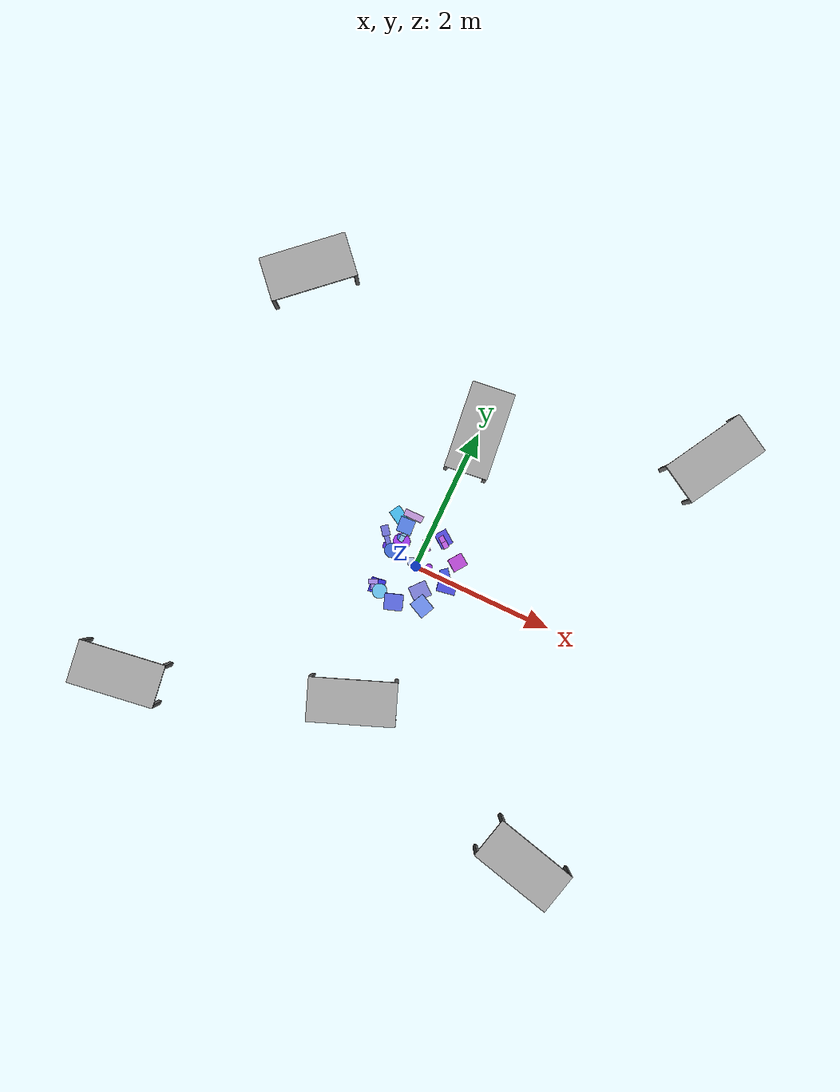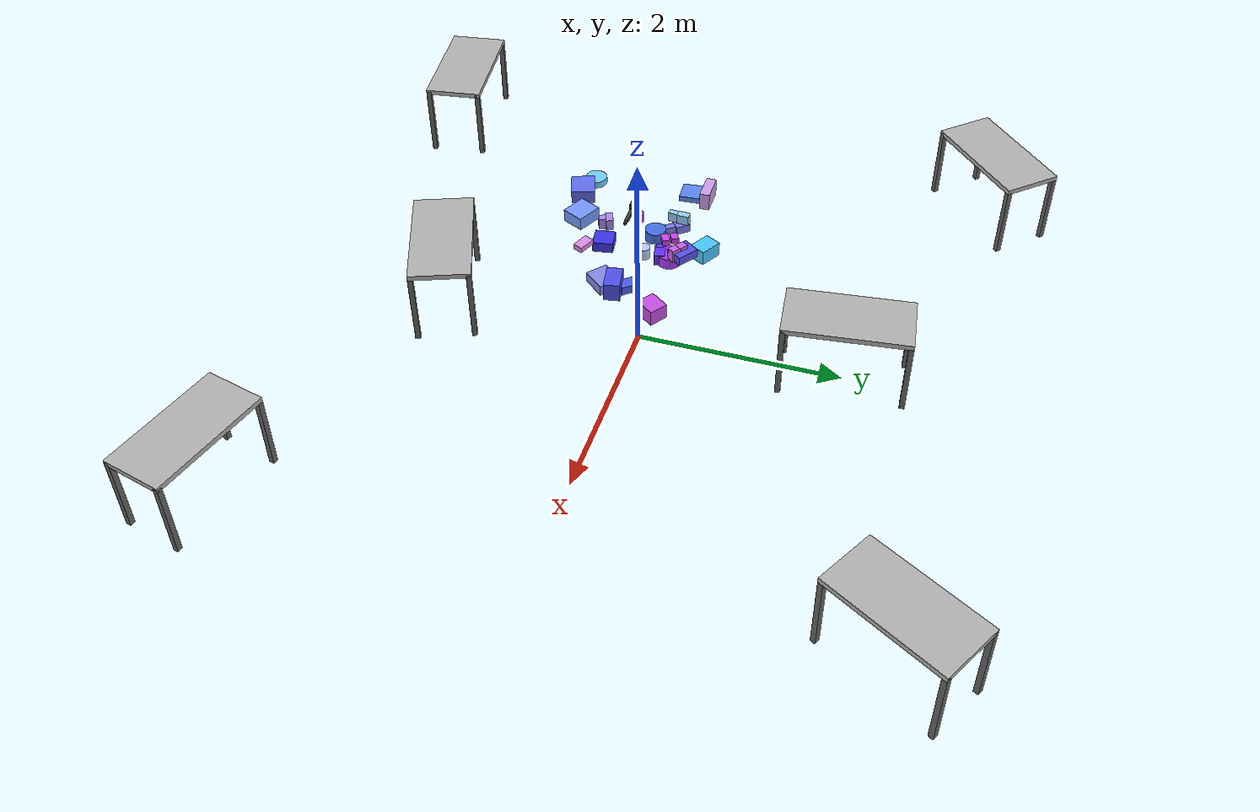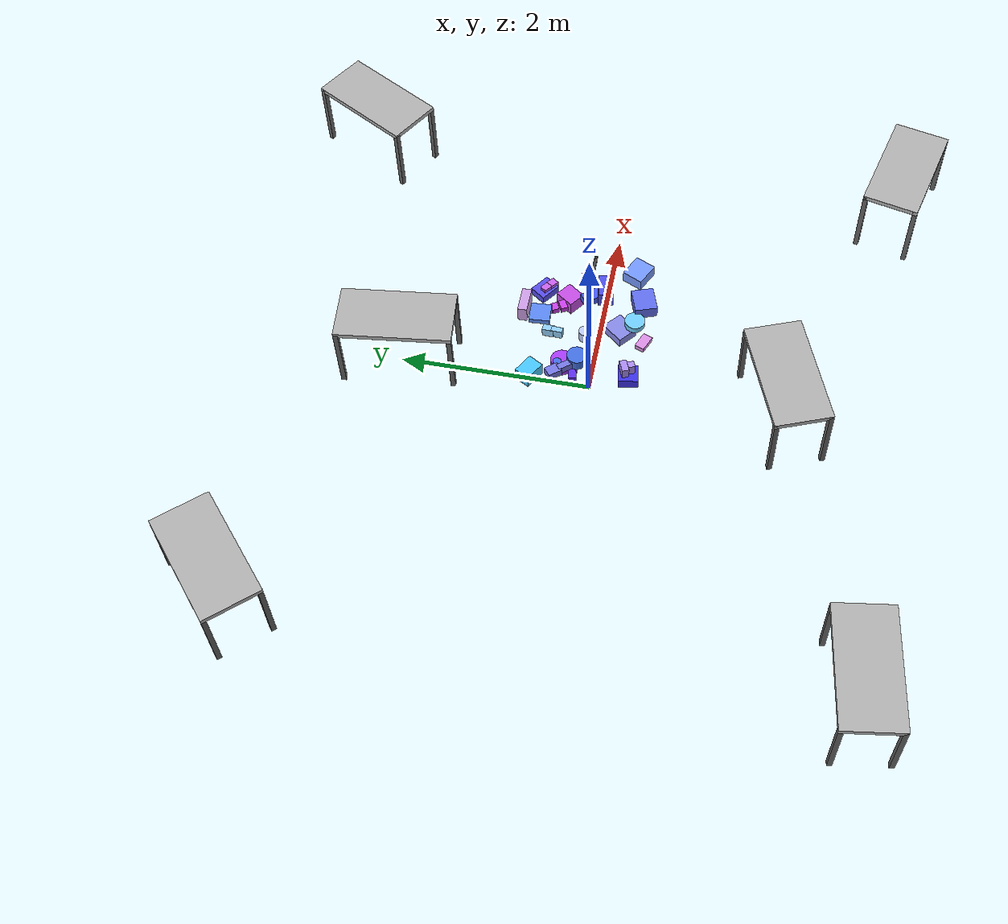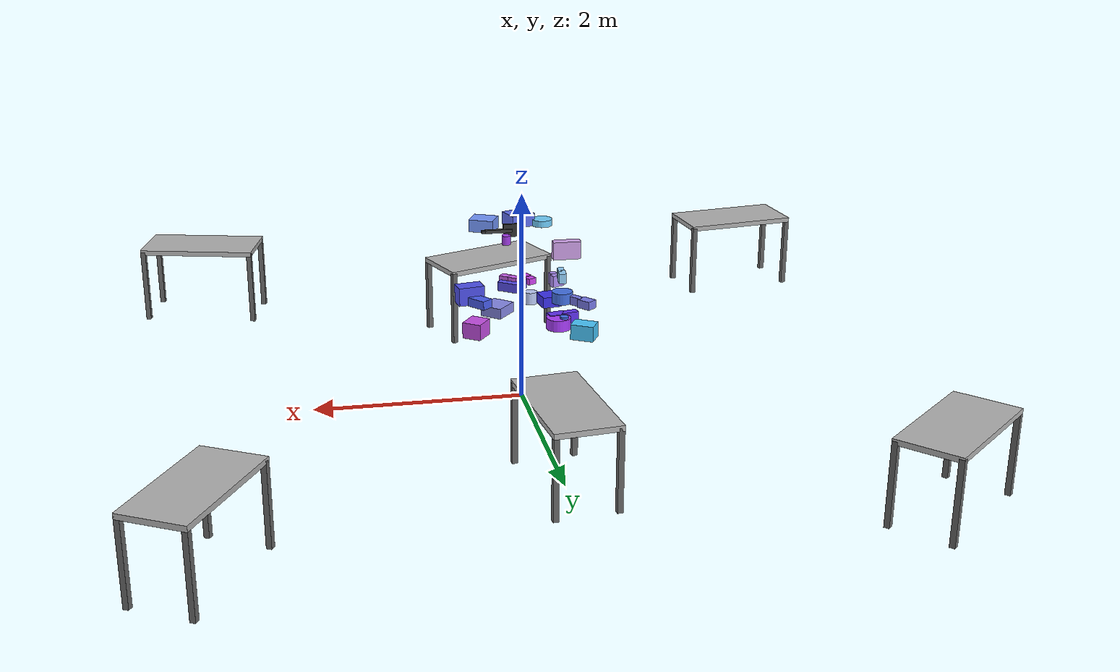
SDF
<sdf version="1.7">
 <world name="warehouse">
  <physics type="ode"><max_step_size>0.003</max_step_size><real_time_factor>1.0</real_time_factor></physics>
  <plugin name="ignition::gazebo::systems::Physics" filename="libignition-gazebo-physics-system.so"/>
  <plugin name="ignition::gazebo::systems::UserCommands" filename="libignition-gazebo-user-commands-system.so"/>
  <plugin name="ignition::gazebo::systems::SceneBroadcaster" filename="libignition-gazebo-scene-broadcaster-system.so"/>
  <scene>
   <ambient>0.18 0.18 0.18 1</ambient>
   <background>0.4 0.4 0.45 1</background>
   <shadows>0</shadows>
   <grid>false</grid>
  </scene>
  <model name="ground_plane">
   <static>true</static>
   <link name="link">
    <collision name="collision">
     <geometry><plane><normal>0.0 0.0 1</normal><size>1 1</size></plane></geometry>
    </collision>
   </link>
  </model>
  <model name="desk_0">
   <static>1</static>
   <link name="desk_link">
    <visual name="desk_0_top_visual">
     <geometry><box><size>1.200 0.600 0.050</size></box></geometry>
     <material><ambient>0.70 0.70 0.70 1.00</ambient><diffuse>0.70 0.70 0.70 1.00</diffuse></material>
     <pose>0.0000 0.0000 0.7550 0.0000 0.0000 0.0000</pose>
    </visual>
    <collision name="desk_0_top_collision">
     <geometry><box><size>1.200 0.600 0.050</size></box></geometry>
     <pose>0.0000 0.0000 0.7550 0.0000 0.0000 0.0000</pose>
    </collision>
    <visual name="desk_0_leg_-1_-1_visual">
     <geometry><box><size>0.050 0.050 0.760</size></box></geometry>
     <material><ambient>0.40 0.40 0.40 1.00</ambient><diffuse>0.40 0.40 0.40 1.00</diffuse></material>
     <pose>-0.5750 -0.2750 0.3800 0.0000 0.0000 0.0000</pose>
    </visual>
    <visual name="desk_0_leg_-1_1_visual">
     <geometry><box><size>0.050 0.050 0.760</size></box></geometry>
     <material><ambient>0.40 0.40 0.40 1.00</ambient><diffuse>0.40 0.40 0.40 1.00</diffuse></material>
     <pose>-0.5750 0.2750 0.3800 0.0000 0.0000 0.0000</pose>
    </visual>
    <visual name="desk_0_leg_1_-1_visual">
     <geometry><box><size>0.050 0.050 0.760</size></box></geometry>
     <material><ambient>0.40 0.40 0.40 1.00</ambient><diffuse>0.40 0.40 0.40 1.00</diffuse></material>
     <pose>0.5750 -0.2750 0.3800 0.0000 0.0000 0.0000</pose>
    </visual>
    <visual name="desk_0_leg_1_1_visual">
     <geometry><box><size>0.050 0.050 0.760</size></box></geometry>
     <material><ambient>0.40 0.40 0.40 1.00</ambient><diffuse>0.40 0.40 0.40 1.00</diffuse></material>
     <pose>0.5750 0.2750 0.3800 0.0000 0.0000 0.0000</pose>
    </visual>
    <inertial>
     <mass>5.000</mass>
     <inertia>
      <ixx>0.010000</ixx>
      <iyy>0.010000</iyy>
      <izz>0.010000</izz>
      <ixy>0.000000</ixy>
      <ixz>0.000000</ixz>
      <iyz>0.000000</iyz>
     </inertia>
    </inertial>
   </link>
   <pose>-3.0000 -3.0000 0.0000 0.0000 0.0000 -2.9998</pose>
  </model>
  <model name="desk_1">
   <static>1</static>
   <link name="desk_link">
    <visual name="desk_1_top_visual">
     <geometry><box><size>1.200 0.600 0.050</size></box></geometry>
     <material><ambient>0.70 0.70 0.70 1.00</ambient><diffuse>0.70 0.70 0.70 1.00</diffuse></material>
     <pose>0.0000 0.0000 0.7550 0.0000 0.0000 0.0000</pose>
    </visual>
    <collision name="desk_1_top_collision">
     <geometry><box><size>1.200 0.600 0.050</size></box></geometry>
     <pose>0.0000 0.0000 0.7550 0.0000 0.0000 0.0000</pose>
    </collision>
    <visual name="desk_1_leg_-1_-1_visual">
     <geometry><box><size>0.050 0.050 0.760</size></box></geometry>
     <material><ambient>0.40 0.40 0.40 1.00</ambient><diffuse>0.40 0.40 0.40 1.00</diffuse></material>
     <pose>-0.5750 -0.2750 0.3800 0.0000 0.0000 0.0000</pose>
    </visual>
    <visual name="desk_1_leg_-1_1_visual">
     <geometry><box><size>0.050 0.050 0.760</size></box></geometry>
     <material><ambient>0.40 0.40 0.40 1.00</ambient><diffuse>0.40 0.40 0.40 1.00</diffuse></material>
     <pose>-0.5750 0.2750 0.3800 0.0000 0.0000 0.0000</pose>
    </visual>
    <visual name="desk_1_leg_1_-1_visual">
     <geometry><box><size>0.050 0.050 0.760</size></box></geometry>
     <material><ambient>0.40 0.40 0.40 1.00</ambient><diffuse>0.40 0.40 0.40 1.00</diffuse></material>
     <pose>0.5750 -0.2750 0.3800 0.0000 0.0000 0.0000</pose>
    </visual>
    <visual name="desk_1_leg_1_1_visual">
     <geometry><box><size>0.050 0.050 0.760</size></box></geometry>
     <material><ambient>0.40 0.40 0.40 1.00</ambient><diffuse>0.40 0.40 0.40 1.00</diffuse></material>
     <pose>0.5750 0.2750 0.3800 0.0000 0.0000 0.0000</pose>
    </visual>
    <inertial>
     <mass>5.000</mass>
     <inertia>
      <ixx>0.010000</ixx>
      <iyy>0.010000</iyy>
      <izz>0.010000</izz>
      <ixy>0.000000</ixy>
      <ixz>0.000000</ixz>
      <iyz>0.000000</iyz>
     </inertia>
    </inertial>
   </link>
   <pose>3.0000 -3.0000 0.0000 0.0000 0.0000 -0.2407</pose>
  </model>
  <model name="desk_2">
   <static>1</static>
   <link name="desk_link">
    <visual name="desk_2_top_visual">
     <geometry><box><size>1.200 0.600 0.050</size></box></geometry>
     <material><ambient>0.70 0.70 0.70 1.00</ambient><diffuse>0.70 0.70 0.70 1.00</diffuse></material>
     <pose>0.0000 0.0000 0.7550 0.0000 0.0000 0.0000</pose>
    </visual>
    <collision name="desk_2_top_collision">
     <geometry><box><size>1.200 0.600 0.050</size></box></geometry>
     <pose>0.0000 0.0000 0.7550 0.0000 0.0000 0.0000</pose>
    </collision>
    <visual name="desk_2_leg_-1_-1_visual">
     <geometry><box><size>0.050 0.050 0.760</size></box></geometry>
     <material><ambient>0.40 0.40 0.40 1.00</ambient><diffuse>0.40 0.40 0.40 1.00</diffuse></material>
     <pose>-0.5750 -0.2750 0.3800 0.0000 0.0000 0.0000</pose>
    </visual>
    <visual name="desk_2_leg_-1_1_visual">
     <geometry><box><size>0.050 0.050 0.760</size></box></geometry>
     <material><ambient>0.40 0.40 0.40 1.00</ambient><diffuse>0.40 0.40 0.40 1.00</diffuse></material>
     <pose>-0.5750 0.2750 0.3800 0.0000 0.0000 0.0000</pose>
    </visual>
    <visual name="desk_2_leg_1_-1_visual">
     <geometry><box><size>0.050 0.050 0.760</size></box></geometry>
     <material><ambient>0.40 0.40 0.40 1.00</ambient><diffuse>0.40 0.40 0.40 1.00</diffuse></material>
     <pose>0.5750 -0.2750 0.3800 0.0000 0.0000 0.0000</pose>
    </visual>
    <visual name="desk_2_leg_1_1_visual">
     <geometry><box><size>0.050 0.050 0.760</size></box></geometry>
     <material><ambient>0.40 0.40 0.40 1.00</ambient><diffuse>0.40 0.40 0.40 1.00</diffuse></material>
     <pose>0.5750 0.2750 0.3800 0.0000 0.0000 0.0000</pose>
    </visual>
    <inertial>
     <mass>5.000</mass>
     <inertia>
      <ixx>0.010000</ixx>
      <iyy>0.010000</iyy>
      <izz>0.010000</izz>
      <ixy>0.000000</ixy>
      <ixz>0.000000</ixz>
      <iyz>0.000000</iyz>
     </inertia>
    </inertial>
   </link>
   <pose>3.0000 3.0000 0.0000 0.0000 0.0000 -2.0857</pose>
  </model>
  <model name="desk_3">
   <static>1</static>
   <link name="desk_link">
    <visual name="desk_3_top_visual">
     <geometry><box><size>1.200 0.600 0.050</size></box></geometry>
     <material><ambient>0.70 0.70 0.70 1.00</ambient><diffuse>0.70 0.70 0.70 1.00</diffuse></material>
     <pose>0.0000 0.0000 0.7550 0.0000 0.0000 0.0000</pose>
    </visual>
    <collision name="desk_3_top_collision">
     <geometry><box><size>1.200 0.600 0.050</size></box></geometry>
     <pose>0.0000 0.0000 0.7550 0.0000 0.0000 0.0000</pose>
    </collision>
    <visual name="desk_3_leg_-1_-1_visual">
     <geometry><box><size>0.050 0.050 0.760</size></box></geometry>
     <material><ambient>0.40 0.40 0.40 1.00</ambient><diffuse>0.40 0.40 0.40 1.00</diffuse></material>
     <pose>-0.5750 -0.2750 0.3800 0.0000 0.0000 0.0000</pose>
    </visual>
    <visual name="desk_3_leg_-1_1_visual">
     <geometry><box><size>0.050 0.050 0.760</size></box></geometry>
     <material><ambient>0.40 0.40 0.40 1.00</ambient><diffuse>0.40 0.40 0.40 1.00</diffuse></material>
     <pose>-0.5750 0.2750 0.3800 0.0000 0.0000 0.0000</pose>
    </visual>
    <visual name="desk_3_leg_1_-1_visual">
     <geometry><box><size>0.050 0.050 0.760</size></box></geometry>
     <material><ambient>0.40 0.40 0.40 1.00</ambient><diffuse>0.40 0.40 0.40 1.00</diffuse></material>
     <pose>0.5750 -0.2750 0.3800 0.0000 0.0000 0.0000</pose>
    </visual>
    <visual name="desk_3_leg_1_1_visual">
     <geometry><box><size>0.050 0.050 0.760</size></box></geometry>
     <material><ambient>0.40 0.40 0.40 1.00</ambient><diffuse>0.40 0.40 0.40 1.00</diffuse></material>
     <pose>0.5750 0.2750 0.3800 0.0000 0.0000 0.0000</pose>
    </visual>
    <inertial>
     <mass>5.000</mass>
     <inertia>
      <ixx>0.010000</ixx>
      <iyy>0.010000</iyy>
      <izz>0.010000</izz>
      <ixy>0.000000</ixy>
      <ixz>0.000000</ixz>
      <iyz>0.000000</iyz>
     </inertia>
    </inertial>
   </link>
   <pose>-3.0000 3.0000 0.0000 0.0000 0.0000 -2.4059</pose>
  </model>
  <model name="desk_4">
   <static>1</static>
   <link name="desk_link">
    <visual name="desk_4_top_visual">
     <geometry><box><size>1.200 0.600 0.050</size></box></geometry>
     <material><ambient>0.70 0.70 0.70 1.00</ambient><diffuse>0.70 0.70 0.70 1.00</diffuse></material>
     <pose>0.0000 0.0000 0.7550 0.0000 0.0000 0.0000</pose>
    </visual>
    <collision name="desk_4_top_collision">
     <geometry><box><size>1.200 0.600 0.050</size></box></geometry>
     <pose>0.0000 0.0000 0.7550 0.0000 0.0000 0.0000</pose>
    </collision>
    <visual name="desk_4_leg_-1_-1_visual">
     <geometry><box><size>0.050 0.050 0.760</size></box></geometry>
     <material><ambient>0.40 0.40 0.40 1.00</ambient><diffuse>0.40 0.40 0.40 1.00</diffuse></material>
     <pose>-0.5750 -0.2750 0.3800 0.0000 0.0000 0.0000</pose>
    </visual>
    <visual name="desk_4_leg_-1_1_visual">
     <geometry><box><size>0.050 0.050 0.760</size></box></geometry>
     <material><ambient>0.40 0.40 0.40 1.00</ambient><diffuse>0.40 0.40 0.40 1.00</diffuse></material>
     <pose>-0.5750 0.2750 0.3800 0.0000 0.0000 0.0000</pose>
    </visual>
    <visual name="desk_4_leg_1_-1_visual">
     <geometry><box><size>0.050 0.050 0.760</size></box></geometry>
     <material><ambient>0.40 0.40 0.40 1.00</ambient><diffuse>0.40 0.40 0.40 1.00</diffuse></material>
     <pose>0.5750 -0.2750 0.3800 0.0000 0.0000 0.0000</pose>
    </visual>
    <visual name="desk_4_leg_1_1_visual">
     <geometry><box><size>0.050 0.050 0.760</size></box></geometry>
     <material><ambient>0.40 0.40 0.40 1.00</ambient><diffuse>0.40 0.40 0.40 1.00</diffuse></material>
     <pose>0.5750 0.2750 0.3800 0.0000 0.0000 0.0000</pose>
    </visual>
    <inertial>
     <mass>5.000</mass>
     <inertia>
      <ixx>0.010000</ixx>
      <iyy>0.010000</iyy>
      <izz>0.010000</izz>
      <ixy>0.000000</ixy>
      <ixz>0.000000</ixz>
      <iyz>0.000000</iyz>
     </inertia>
    </inertial>
   </link>
   <pose>0.0000 -2.0000 0.0000 0.0000 0.0000 -2.7712</pose>
  </model>
  <model name="desk_5">
   <static>1</static>
   <link name="desk_link">
    <visual name="desk_5_top_visual">
     <geometry><box><size>1.200 0.600 0.050</size></box></geometry>
     <material><ambient>0.70 0.70 0.70 1.00</ambient><diffuse>0.70 0.70 0.70 1.00</diffuse></material>
     <pose>0.0000 0.0000 0.7550 0.0000 0.0000 0.0000</pose>
    </visual>
    <collision name="desk_5_top_collision">
     <geometry><box><size>1.200 0.600 0.050</size></box></geometry>
     <pose>0.0000 0.0000 0.7550 0.0000 0.0000 0.0000</pose>
    </collision>
    <visual name="desk_5_leg_-1_-1_visual">
     <geometry><box><size>0.050 0.050 0.760</size></box></geometry>
     <material><ambient>0.40 0.40 0.40 1.00</ambient><diffuse>0.40 0.40 0.40 1.00</diffuse></material>
     <pose>-0.5750 -0.2750 0.3800 0.0000 0.0000 0.0000</pose>
    </visual>
    <visual name="desk_5_leg_-1_1_visual">
     <geometry><box><size>0.050 0.050 0.760</size></box></geometry>
     <material><ambient>0.40 0.40 0.40 1.00</ambient><diffuse>0.40 0.40 0.40 1.00</diffuse></material>
     <pose>-0.5750 0.2750 0.3800 0.0000 0.0000 0.0000</pose>
    </visual>
    <visual name="desk_5_leg_1_-1_visual">
     <geometry><box><size>0.050 0.050 0.760</size></box></geometry>
     <material><ambient>0.40 0.40 0.40 1.00</ambient><diffuse>0.40 0.40 0.40 1.00</diffuse></material>
     <pose>0.5750 -0.2750 0.3800 0.0000 0.0000 0.0000</pose>
    </visual>
    <visual name="desk_5_leg_1_1_visual">
     <geometry><box><size>0.050 0.050 0.760</size></box></geometry>
     <material><ambient>0.40 0.40 0.40 1.00</ambient><diffuse>0.40 0.40 0.40 1.00</diffuse></material>
     <pose>0.5750 0.2750 0.3800 0.0000 0.0000 0.0000</pose>
    </visual>
    <inertial>
     <mass>5.000</mass>
     <inertia>
      <ixx>0.010000</ixx>
      <iyy>0.010000</iyy>
      <izz>0.010000</izz>
      <ixy>0.000000</ixy>
      <ixz>0.000000</ixz>
      <iyz>0.000000</iyz>
     </inertia>
    </inertial>
   </link>
   <pose>0.0000 2.0000 0.0000 0.0000 0.0000 1.6854</pose>
  </model>
  <model name="obj_box_0">
   <static>0</static>
   <pose>0.4084 0.0471 0.9916 0.0000 0.0000 -0.8880</pose>
   <link name="link">
    <visual name="obj_box_0_visual">
     <geometry><box><size>0.193 0.116 0.083</size></box></geometry>
     <material><ambient>0.29 0.37 0.94 1.00</ambient><diffuse>0.29 0.37 0.94 1.00</diffuse></material>
    </visual>
    <collision name="obj_box_0_collision">
     <geometry><box><size>0.193 0.116 0.083</size></box></geometry>
    </collision>
    <inertial>
     <mass>0.374</mass>
     <inertia>
      <ixx>0.010000</ixx>
      <iyy>0.010000</iyy>
      <izz>0.010000</izz>
      <ixy>0.000000</ixy>
      <ixz>0.000000</ixz>
      <iyz>0.000000</iyz>
     </inertia>
    </inertial>
   </link>
  </model>
  <model name="obj_L_1">
   <static>0</static>
   <pose>-0.0145 0.3396 1.2790 0.0000 0.0000 -1.0742</pose>
   <link name="linkA">
    <visual name="obj_L_1_A_visual">
     <geometry><box><size>0.068 0.083 0.058</size></box></geometry>
     <material><ambient>0.81 0.26 0.94 1.00</ambient><diffuse>0.81 0.26 0.94 1.00</diffuse></material>
    </visual>
    <collision name="obj_L_1_A_collision">
     <geometry><box><size>0.068 0.083 0.058</size></box></geometry>
    </collision>
    <inertial>
     <mass>0.200</mass>
     <inertia>
      <ixx>0.010000</ixx>
      <iyy>0.010000</iyy>
      <izz>0.010000</izz>
      <ixy>0.000000</ixy>
      <ixz>0.000000</ixz>
      <iyz>0.000000</iyz>
     </inertia>
    </inertial>
   </link>
   <link name="linkB">
    <visual name="obj_L_1_B_visual">
     <geometry><box><size>0.068 0.102 0.058</size></box></geometry>
     <material><ambient>0.81 0.26 0.94 1.00</ambient><diffuse>0.81 0.26 0.94 1.00</diffuse></material>
    </visual>
    <collision name="obj_L_1_B_collision">
     <geometry><box><size>0.068 0.102 0.058</size></box></geometry>
    </collision>
    <inertial>
     <mass>0.200</mass>
     <inertia>
      <ixx>0.010000</ixx>
      <iyy>0.010000</iyy>
      <izz>0.010000</izz>
      <ixy>0.000000</ixy>
      <ixz>0.000000</ixz>
      <iyz>0.000000</iyz>
     </inertia>
    </inertial>
    <pose>0.0850 0.0000 0.0000 0.0000 0.0000 0.0000</pose>
   </link>
   <joint name="obj_L_1_fixed" type="fixed"><parent>linkA</parent><child>linkB</child></joint>
  </model>
  <model name="obj_L_2">
   <static>0</static>
   <pose>-0.3084 0.3435 1.2960 0.0000 0.0000 -1.6410</pose>
   <link name="linkA">
    <visual name="obj_L_2_A_visual">
     <geometry><box><size>0.111 0.068 0.092</size></box></geometry>
     <material><ambient>0.58 0.82 0.98 1.00</ambient><diffuse>0.58 0.82 0.98 1.00</diffuse></material>
    </visual>
    <collision name="obj_L_2_A_collision">
     <geometry><box><size>0.111 0.068 0.092</size></box></geometry>
    </collision>
    <inertial>
     <mass>0.200</mass>
     <inertia>
      <ixx>0.010000</ixx>
      <iyy>0.010000</iyy>
      <izz>0.010000</izz>
      <ixy>0.000000</ixy>
      <ixz>0.000000</ixz>
      <iyz>0.000000</iyz>
     </inertia>
    </inertial>
   </link>
   <link name="linkB">
    <visual name="obj_L_2_B_visual">
     <geometry><box><size>0.111 0.057 0.092</size></box></geometry>
     <material><ambient>0.58 0.82 0.98 1.00</ambient><diffuse>0.58 0.82 0.98 1.00</diffuse></material>
    </visual>
    <collision name="obj_L_2_B_collision">
     <geometry><box><size>0.111 0.057 0.092</size></box></geometry>
    </collision>
    <inertial>
     <mass>0.200</mass>
     <inertia>
      <ixx>0.010000</ixx>
      <iyy>0.010000</iyy>
      <izz>0.010000</izz>
      <ixy>0.000000</ixy>
      <ixz>0.000000</ixz>
      <iyz>0.000000</iyz>
     </inertia>
    </inertial>
    <pose>0.0838 0.0000 0.0000 0.0000 0.0000 0.0000</pose>
   </link>
   <joint name="obj_L_2_fixed" type="fixed"><parent>linkA</parent><child>linkB</child></joint>
  </model>
  <model name="obj_L_3">
   <static>0</static>
   <pose>0.1648 0.4589 1.3085 0.0000 0.0000 -0.6620</pose>
   <link name="linkA">
    <visual name="obj_L_3_A_visual">
     <geometry><box><size>0.087 0.069 0.117</size></box></geometry>
     <material><ambient>0.80 0.39 0.94 1.00</ambient><diffuse>0.80 0.39 0.94 1.00</diffuse></material>
    </visual>
    <collision name="obj_L_3_A_collision">
     <geometry><box><size>0.087 0.069 0.117</size></box></geometry>
    </collision>
    <inertial>
     <mass>0.200</mass>
     <inertia>
      <ixx>0.010000</ixx>
      <iyy>0.010000</iyy>
      <izz>0.010000</izz>
      <ixy>0.000000</ixy>
      <ixz>0.000000</ixz>
      <iyz>0.000000</iyz>
     </inertia>
    </inertial>
   </link>
   <link name="linkB">
    <visual name="obj_L_3_B_visual">
     <geometry><box><size>0.087 0.073 0.117</size></box></geometry>
     <material><ambient>0.80 0.39 0.94 1.00</ambient><diffuse>0.80 0.39 0.94 1.00</diffuse></material>
    </visual>
    <collision name="obj_L_3_B_collision">
     <geometry><box><size>0.087 0.073 0.117</size></box></geometry>
    </collision>
    <inertial>
     <mass>0.200</mass>
     <inertia>
      <ixx>0.010000</ixx>
      <iyy>0.010000</iyy>
      <izz>0.010000</izz>
      <ixy>0.000000</ixy>
      <ixz>0.000000</ixz>
      <iyz>0.000000</iyz>
     </inertia>
    </inertial>
    <pose>0.0805 0.0000 0.0000 0.0000 0.0000 0.0000</pose>
   </link>
   <joint name="obj_L_3_fixed" type="fixed"><parent>linkA</parent><child>linkB</child></joint>
  </model>
  <model name="obj_cyl_4">
   <static>0</static>
   <pose>-0.2833 -0.4864 1.5809 0.0000 0.0000 1.8573</pose>
   <link name="link">
    <visual name="obj_cyl_4_visual">
     <geometry><cylinder><radius>0.096</radius><length>0.062</length></cylinder></geometry>
     <material><ambient>0.45 0.82 1.00 1.00</ambient><diffuse>0.45 0.82 1.00 1.00</diffuse></material>
    </visual>
    <collision name="obj_cyl_4_collision">
     <geometry><cylinder><radius>0.096</radius><length>0.062</length></cylinder></geometry>
    </collision>
    <inertial>
     <mass>0.361</mass>
     <inertia>
      <ixx>0.010000</ixx>
      <iyy>0.010000</iyy>
      <izz>0.010000</izz>
      <ixy>0.000000</ixy>
      <ixz>0.000000</ixz>
      <iyz>0.000000</iyz>
     </inertia>
    </inertial>
   </link>
  </model>
  <model name="obj_box_5">
   <static>0</static>
   <pose>0.4856 -0.0819 1.0371 0.0000 0.0000 -1.3965</pose>
   <link name="link">
    <visual name="obj_box_5_visual">
     <geometry><box><size>0.149 0.248 0.174</size></box></geometry>
     <material><ambient>0.31 0.32 0.92 1.00</ambient><diffuse>0.31 0.32 0.92 1.00</diffuse></material>
    </visual>
    <collision name="obj_box_5_collision">
     <geometry><box><size>0.149 0.248 0.174</size></box></geometry>
    </collision>
    <inertial>
     <mass>1.288</mass>
     <inertia>
      <ixx>0.010000</ixx>
      <iyy>0.010000</iyy>
      <izz>0.010000</izz>
      <ixy>0.000000</ixy>
      <ixz>0.000000</ixz>
      <iyz>0.000000</iyz>
     </inertia>
    </inertial>
   </link>
  </model>
  <model name="obj_box_6">
   <static>0</static>
   <pose>-0.3337 0.4126 1.5754 0.0000 0.0000 0.0656</pose>
   <link name="link">
    <visual name="obj_box_6_visual">
     <geometry><box><size>0.197 0.196 0.051</size></box></geometry>
     <material><ambient>0.36 0.54 0.96 1.00</ambient><diffuse>0.36 0.54 0.96 1.00</diffuse></material>
    </visual>
    <collision name="obj_box_6_collision">
     <geometry><box><size>0.197 0.196 0.051</size></box></geometry>
    </collision>
    <inertial>
     <mass>0.394</mass>
     <inertia>
      <ixx>0.010000</ixx>
      <iyy>0.010000</iyy>
      <izz>0.010000</izz>
      <ixy>0.000000</ixy>
      <ixz>0.000000</ixz>
      <iyz>0.000000</iyz>
     </inertia>
    </inertial>
   </link>
  </model>
  <model name="obj_L_7">
   <static>0</static>
   <pose>-0.4341 0.0908 0.8068 0.0000 0.0000 0.2148</pose>
   <link name="linkA">
    <visual name="obj_L_7_A_visual">
     <geometry><box><size>0.161 0.074 0.114</size></box></geometry>
     <material><ambient>0.38 0.20 0.94 1.00</ambient><diffuse>0.38 0.20 0.94 1.00</diffuse></material>
    </visual>
    <collision name="obj_L_7_A_collision">
     <geometry><box><size>0.161 0.074 0.114</size></box></geometry>
    </collision>
    <inertial>
     <mass>0.271</mass>
     <inertia>
      <ixx>0.010000</ixx>
      <iyy>0.010000</iyy>
      <izz>0.010000</izz>
      <ixy>0.000000</ixy>
      <ixz>0.000000</ixz>
      <iyz>0.000000</iyz>
     </inertia>
    </inertial>
   </link>
   <link name="linkB">
    <visual name="obj_L_7_B_visual">
     <geometry><box><size>0.161 0.102 0.114</size></box></geometry>
     <material><ambient>0.38 0.20 0.94 1.00</ambient><diffuse>0.38 0.20 0.94 1.00</diffuse></material>
    </visual>
    <collision name="obj_L_7_B_collision">
     <geometry><box><size>0.161 0.102 0.114</size></box></geometry>
    </collision>
    <inertial>
     <mass>0.372</mass>
     <inertia>
      <ixx>0.010000</ixx>
      <iyy>0.010000</iyy>
      <izz>0.010000</izz>
      <ixy>0.000000</ixy>
      <ixz>0.000000</ixz>
      <iyz>0.000000</iyz>
     </inertia>
    </inertial>
    <pose>0.1313 0.0000 0.0000 0.0000 0.0000 0.0000</pose>
   </link>
   <joint name="obj_L_7_fixed" type="fixed"><parent>linkA</parent><child>linkB</child></joint>
  </model>
  <model name="obj_box_8">
   <static>0</static>
   <pose>0.2922 -0.4316 1.6085 0.0000 0.0000 -2.0180</pose>
   <link name="link">
    <visual name="obj_box_8_visual">
     <geometry><box><size>0.205 0.232 0.117</size></box></geometry>
     <material><ambient>0.46 0.60 1.00 1.00</ambient><diffuse>0.46 0.60 1.00 1.00</diffuse></material>
    </visual>
    <collision name="obj_box_8_collision">
     <geometry><box><size>0.205 0.232 0.117</size></box></geometry>
    </collision>
    <inertial>
     <mass>1.114</mass>
     <inertia>
      <ixx>0.010000</ixx>
      <iyy>0.010000</iyy>
      <izz>0.010000</izz>
      <ixy>0.000000</ixy>
      <ixz>0.000000</ixz>
      <iyz>0.000000</iyz>
     </inertia>
    </inertial>
   </link>
  </model>
  <model name="obj_L_9">
   <static>0</static>
   <pose>-0.4188 -0.4200 1.0060 0.0000 0.0000 -1.1816</pose>
   <link name="linkA">
    <visual name="obj_L_9_A_visual">
     <geometry><box><size>0.068 0.126 0.112</size></box></geometry>
     <material><ambient>0.68 0.56 0.96 1.00</ambient><diffuse>0.68 0.56 0.96 1.00</diffuse></material>
    </visual>
    <collision name="obj_L_9_A_collision">
     <geometry><box><size>0.068 0.126 0.112</size></box></geometry>
    </collision>
    <inertial>
     <mass>0.200</mass>
     <inertia>
      <ixx>0.010000</ixx>
      <iyy>0.010000</iyy>
      <izz>0.010000</izz>
      <ixy>0.000000</ixy>
      <ixz>0.000000</ixz>
      <iyz>0.000000</iyz>
     </inertia>
    </inertial>
   </link>
   <link name="linkB">
    <visual name="obj_L_9_B_visual">
     <geometry><box><size>0.068 0.068 0.112</size></box></geometry>
     <material><ambient>0.68 0.56 0.96 1.00</ambient><diffuse>0.68 0.56 0.96 1.00</diffuse></material>
    </visual>
    <collision name="obj_L_9_B_collision">
     <geometry><box><size>0.068 0.068 0.112</size></box></geometry>
    </collision>
    <inertial>
     <mass>0.200</mass>
     <inertia>
      <ixx>0.010000</ixx>
      <iyy>0.010000</iyy>
      <izz>0.010000</izz>
      <ixy>0.000000</ixy>
      <ixz>0.000000</ixz>
      <iyz>0.000000</iyz>
     </inertia>
    </inertial>
    <pose>0.0681 0.0000 0.0000 0.0000 0.0000 0.0000</pose>
   </link>
   <joint name="obj_L_9_fixed" type="fixed"><parent>linkA</parent><child>linkB</child></joint>
  </model>
  <model name="obj_cyl_10">
   <static>0</static>
   <pose>-0.3075 0.2149 0.8038 0.0000 0.0000 -1.0834</pose>
   <link name="link">
    <visual name="obj_cyl_10_visual">
     <geometry><cylinder><radius>0.115</radius><length>0.108</length></cylinder></geometry>
     <material><ambient>0.67 0.24 0.99 1.00</ambient><diffuse>0.67 0.24 0.99 1.00</diffuse></material>
    </visual>
    <collision name="obj_cyl_10_collision">
     <geometry><cylinder><radius>0.115</radius><length>0.108</length></cylinder></geometry>
    </collision>
    <inertial>
     <mass>0.893</mass>
     <inertia>
      <ixx>0.010000</ixx>
      <iyy>0.010000</iyy>
      <izz>0.010000</izz>
      <ixy>0.000000</ixy>
      <ixz>0.000000</ixz>
      <iyz>0.000000</iyz>
     </inertia>
    </inertial>
   </link>
  </model>
  <model name="obj_cyl_11">
   <static>0</static>
   <pose>-0.0750 0.0293 1.0067 0.0000 0.0000 1.8866</pose>
   <link name="link">
    <visual name="obj_cyl_11_visual">
     <geometry><cylinder><radius>0.060</radius><length>0.113</length></cylinder></geometry>
     <material><ambient>0.75 0.81 0.98 1.00</ambient><diffuse>0.75 0.81 0.98 1.00</diffuse></material>
    </visual>
    <collision name="obj_cyl_11_collision">
     <geometry><cylinder><radius>0.060</radius><length>0.113</length></cylinder></geometry>
    </collision>
    <inertial>
     <mass>0.252</mass>
     <inertia>
      <ixx>0.010000</ixx>
      <iyy>0.010000</iyy>
      <izz>0.010000</izz>
      <ixy>0.000000</ixy>
      <ixz>0.000000</ixz>
      <iyz>0.000000</iyz>
     </inertia>
    </inertial>
   </link>
  </model>
  <model name="obj_L_12">
   <static>0</static>
   <pose>-0.4879 0.1597 0.9901 0.0000 0.0000 2.2413</pose>
   <link name="linkA">
    <visual name="obj_L_12_A_visual">
     <geometry><box><size>0.139 0.065 0.080</size></box></geometry>
     <material><ambient>0.47 0.48 0.91 1.00</ambient><diffuse>0.47 0.48 0.91 1.00</diffuse></material>
    </visual>
    <collision name="obj_L_12_A_collision">
     <geometry><box><size>0.139 0.065 0.080</size></box></geometry>
    </collision>
    <inertial>
     <mass>0.200</mass>
     <inertia>
      <ixx>0.010000</ixx>
      <iyy>0.010000</iyy>
      <izz>0.010000</izz>
      <ixy>0.000000</ixy>
      <ixz>0.000000</ixz>
      <iyz>0.000000</iyz>
     </inertia>
    </inertial>
   </link>
   <link name="linkB">
    <visual name="obj_L_12_B_visual">
     <geometry><box><size>0.139 0.103 0.080</size></box></geometry>
     <material><ambient>0.47 0.48 0.91 1.00</ambient><diffuse>0.47 0.48 0.91 1.00</diffuse></material>
    </visual>
    <collision name="obj_L_12_B_collision">
     <geometry><box><size>0.139 0.103 0.080</size></box></geometry>
    </collision>
    <inertial>
     <mass>0.230</mass>
     <inertia>
      <ixx>0.010000</ixx>
      <iyy>0.010000</iyy>
      <izz>0.010000</izz>
      <ixy>0.000000</ixy>
      <ixz>0.000000</ixz>
      <iyz>0.000000</iyz>
     </inertia>
    </inertial>
    <pose>0.1210 0.0000 0.0000 0.0000 0.0000 0.0000</pose>
   </link>
   <joint name="obj_L_12_fixed" type="fixed"><parent>linkA</parent><child>linkB</child></joint>
  </model>
  <model name="obj_cyl_13">
   <static>0</static>
   <pose>0.1604 0.0628 1.5927 0.0000 0.0000 0.2221</pose>
   <link name="link">
    <visual name="obj_cyl_13_visual">
     <geometry><cylinder><radius>0.041</radius><length>0.085</length></cylinder></geometry>
     <material><ambient>0.64 0.24 0.91 1.00</ambient><diffuse>0.64 0.24 0.91 1.00</diffuse></material>
    </visual>
    <collision name="obj_cyl_13_collision">
     <geometry><cylinder><radius>0.041</radius><length>0.085</length></cylinder></geometry>
    </collision>
    <inertial>
     <mass>0.200</mass>
     <inertia>
      <ixx>0.010000</ixx>
      <iyy>0.010000</iyy>
      <izz>0.010000</izz>
      <ixy>0.000000</ixy>
      <ixz>0.000000</ixz>
      <iyz>0.000000</iyz>
     </inertia>
    </inertial>
   </link>
  </model>
  <model name="obj_box_14">
   <static>0</static>
   <pose>0.1789 0.4730 1.2912 0.0000 0.0000 -0.6233</pose>
   <link name="link">
    <visual name="obj_box_14_visual">
     <geometry><box><size>0.207 0.168 0.082</size></box></geometry>
     <material><ambient>0.35 0.31 0.93 1.00</ambient><diffuse>0.35 0.31 0.93 1.00</diffuse></material>
    </visual>
    <collision name="obj_box_14_collision">
     <geometry><box><size>0.207 0.168 0.082</size></box></geometry>
    </collision>
    <inertial>
     <mass>0.572</mass>
     <inertia>
      <ixx>0.010000</ixx>
      <iyy>0.010000</iyy>
      <izz>0.010000</izz>
      <ixy>0.000000</ixy>
      <ixz>0.000000</ixz>
      <iyz>0.000000</iyz>
     </inertia>
    </inertial>
   </link>
  </model>
  <model name="obj_box_15">
   <static>0</static>
   <pose>-0.3541 -0.4543 0.8023 0.0000 0.0000 -2.9922</pose>
   <link name="link">
    <visual name="obj_box_15_visual">
     <geometry><box><size>0.195 0.197 0.105</size></box></geometry>
     <material><ambient>0.24 0.20 0.92 1.00</ambient><diffuse>0.24 0.20 0.92 1.00</diffuse></material>
    </visual>
    <collision name="obj_box_15_collision">
     <geometry><box><size>0.195 0.197 0.105</size></box></geometry>
    </collision>
    <inertial>
     <mass>0.804</mass>
     <inertia>
      <ixx>0.010000</ixx>
      <iyy>0.010000</iyy>
      <izz>0.010000</izz>
      <ixy>0.000000</ixy>
      <ixz>0.000000</ixz>
      <iyz>0.000000</iyz>
     </inertia>
    </inertial>
   </link>
  </model>
  <model name="obj_cyl_16">
   <static>0</static>
   <pose>-0.3725 0.0550 1.0029 0.0000 0.0000 -1.1413</pose>
   <link name="link">
    <visual name="obj_cyl_16_visual">
     <geometry><cylinder><radius>0.099</radius><length>0.106</length></cylinder></geometry>
     <material><ambient>0.27 0.45 0.90 1.00</ambient><diffuse>0.27 0.45 0.90 1.00</diffuse></material>
    </visual>
    <collision name="obj_cyl_16_collision">
     <geometry><cylinder><radius>0.099</radius><length>0.106</length></cylinder></geometry>
    </collision>
    <inertial>
     <mass>0.648</mass>
     <inertia>
      <ixx>0.010000</ixx>
      <iyy>0.010000</iyy>
      <izz>0.010000</izz>
      <ixy>0.000000</ixy>
      <ixz>0.000000</ixz>
      <iyz>0.000000</iyz>
     </inertia>
    </inertial>
   </link>
  </model>
  <model name="obj_box_17">
   <static>0</static>
   <pose>-0.2964 0.5690 1.6305 0.0000 0.0000 1.5793</pose>
   <link name="link">
    <visual name="obj_box_17_visual">
     <geometry><box><size>0.088 0.249 0.161</size></box></geometry>
     <material><ambient>0.81 0.63 0.91 1.00</ambient><diffuse>0.81 0.63 0.91 1.00</diffuse></material>
    </visual>
    <collision name="obj_box_17_collision">
     <geometry><box><size>0.088 0.249 0.161</size></box></geometry>
    </collision>
    <inertial>
     <mass>0.708</mass>
     <inertia>
      <ixx>0.010000</ixx>
      <iyy>0.010000</iyy>
      <izz>0.010000</izz>
      <ixy>0.000000</ixy>
      <ixz>0.000000</ixz>
      <iyz>0.000000</iyz>
     </inertia>
    </inertial>
   </link>
  </model>
  <model name="obj_box_18">
   <static>0</static>
   <pose>-0.0615 -0.5381 1.6099 0.0000 0.0000 0.3314</pose>
   <link name="link">
    <visual name="obj_box_18_visual">
     <geometry><box><size>0.242 0.211 0.120</size></box></geometry>
     <material><ambient>0.38 0.44 0.94 1.00</ambient><diffuse>0.38 0.44 0.94 1.00</diffuse></material>
    </visual>
    <collision name="obj_box_18_collision">
     <geometry><box><size>0.242 0.211 0.120</size></box></geometry>
    </collision>
    <inertial>
     <mass>1.224</mass>
     <inertia>
      <ixx>0.010000</ixx>
      <iyy>0.010000</iyy>
      <izz>0.010000</izz>
      <ixy>0.000000</ixy>
      <ixz>0.000000</ixz>
      <iyz>0.000000</iyz>
     </inertia>
    </inertial>
   </link>
  </model>
  <model name="obj_box_19">
   <static>0</static>
   <pose>-0.4868 0.5129 0.8227 0.0000 0.0000 1.0511</pose>
   <link name="link">
    <visual name="obj_box_19_visual">
     <geometry><box><size>0.163 0.217 0.145</size></box></geometry>
     <material><ambient>0.29 0.79 1.00 1.00</ambient><diffuse>0.29 0.79 1.00 1.00</diffuse></material>
    </visual>
    <collision name="obj_box_19_collision">
     <geometry><box><size>0.163 0.217 0.145</size></box></geometry>
    </collision>
    <inertial>
     <mass>1.027</mass>
     <inertia>
      <ixx>0.010000</ixx>
      <iyy>0.010000</iyy>
      <izz>0.010000</izz>
      <ixy>0.000000</ixy>
      <ixz>0.000000</ixz>
      <iyz>0.000000</iyz>
     </inertia>
    </inertial>
   </link>
  </model>
  <model name="obj_box_20">
   <static>0</static>
   <pose>0.1921 -0.2808 0.8004 0.0000 0.0000 0.8688</pose>
   <link name="link">
    <visual name="obj_box_20_visual">
     <geometry><box><size>0.246 0.216 0.101</size></box></geometry>
     <material><ambient>0.53 0.54 0.91 1.00</ambient><diffuse>0.53 0.54 0.91 1.00</diffuse></material>
    </visual>
    <collision name="obj_box_20_collision">
     <geometry><box><size>0.246 0.216 0.101</size></box></geometry>
    </collision>
    <inertial>
     <mass>1.070</mass>
     <inertia>
      <ixx>0.010000</ixx>
      <iyy>0.010000</iyy>
      <izz>0.010000</izz>
      <ixy>0.000000</ixy>
      <ixz>0.000000</ixz>
      <iyz>0.000000</iyz>
     </inertia>
    </inertial>
   </link>
  </model>
  <model name="obj_cyl_21">
   <static>0</static>
   <pose>-0.3532 0.2564 0.8139 0.0000 0.0000 -0.5206</pose>
   <link name="link">
    <visual name="obj_cyl_21_visual">
     <geometry><cylinder><radius>0.041</radius><length>0.128</length></cylinder></geometry>
     <material><ambient>0.27 0.44 0.93 1.00</ambient><diffuse>0.27 0.44 0.93 1.00</diffuse></material>
    </visual>
    <collision name="obj_cyl_21_collision">
     <geometry><cylinder><radius>0.041</radius><length>0.128</length></cylinder></geometry>
    </collision>
    <inertial>
     <mass>0.200</mass>
     <inertia>
      <ixx>0.010000</ixx>
      <iyy>0.010000</iyy>
      <izz>0.010000</izz>
      <ixy>0.000000</ixy>
      <ixz>0.000000</ixz>
      <iyz>0.000000</iyz>
     </inertia>
    </inertial>
   </link>
  </model>
  <model name="obj_box_22">
   <static>0</static>
   <pose>0.4814 0.2802 0.8249 0.0000 0.0000 0.9503</pose>
   <link name="link">
    <visual name="obj_box_22_visual">
     <geometry><box><size>0.204 0.180 0.150</size></box></geometry>
     <material><ambient>0.78 0.31 0.90 1.00</ambient><diffuse>0.78 0.31 0.90 1.00</diffuse></material>
    </visual>
    <collision name="obj_box_22_collision">
     <geometry><box><size>0.204 0.180 0.150</size></box></geometry>
    </collision>
    <inertial>
     <mass>1.099</mass>
     <inertia>
      <ixx>0.010000</ixx>
      <iyy>0.010000</iyy>
      <izz>0.010000</izz>
      <ixy>0.000000</ixy>
      <ixz>0.000000</ixz>
      <iyz>0.000000</iyz>
     </inertia>
    </inertial>
   </link>
  </model>
  <model name="obj_box_23">
   <static>0</static>
   <pose>-0.0513 -0.5546 0.9759 0.0000 0.0000 -1.9523</pose>
   <link name="link">
    <visual name="obj_box_23_visual">
     <geometry><box><size>0.098 0.170 0.052</size></box></geometry>
     <material><ambient>0.87 0.57 0.91 1.00</ambient><diffuse>0.87 0.57 0.91 1.00</diffuse></material>
    </visual>
    <collision name="obj_box_23_collision">
     <geometry><box><size>0.098 0.170 0.052</size></box></geometry>
    </collision>
    <inertial>
     <mass>0.200</mass>
     <inertia>
      <ixx>0.010000</ixx>
      <iyy>0.010000</iyy>
      <izz>0.010000</izz>
      <ixy>0.000000</ixy>
      <ixz>0.000000</ixz>
      <iyz>0.000000</iyz>
     </inertia>
    </inertial>
   </link>
  </model>
  <model name="realsense_mount_0">
   <static>1</static>
   <pose>0.1000 0.0000 1.6000 0.0000 0.0000 0.0000</pose>
   <link name="bracket_link">
    <visual name="realsense_mount_0_wall_plate_visual">
     <geometry><box><size>0.150 0.020 0.120</size></box></geometry>
     <material><ambient>0.20 0.20 0.20 1.00</ambient><diffuse>0.20 0.20 0.20 1.00</diffuse></material>
     <pose>0.0000 -0.0100 0.0600 0.0000 0.0000 0.0000</pose>
    </visual>
    <visual name="realsense_mount_0_arm_visual">
     <geometry><box><size>0.250 0.030 0.030</size></box></geometry>
     <material><ambient>0.25 0.25 0.25 1.00</ambient><diffuse>0.25 0.25 0.25 1.00</diffuse></material>
     <pose>0.1200 0.0000 0.0600 0.0000 0.0000 0.0000</pose>
    </visual>
    <collision name="realsense_mount_0_arm_col_collision">
     <geometry><box><size>0.250 0.030 0.030</size></box></geometry>
    </collision>
    <inertial>
     <mass>0.500</mass>
     <inertia>
      <ixx>0.010000</ixx>
      <iyy>0.010000</iyy>
      <izz>0.010000</izz>
      <ixy>0.000000</ixy>
      <ixz>0.000000</ixz>
      <iyz>0.000000</iyz>
     </inertia>
    </inertial>
   </link>
   <link name="camera_link">
    <visual name="realsense_mount_0_body_visual">
     <geometry><box><size>0.120 0.025 0.025</size></box></geometry>
     <material><ambient>0.20 0.20 0.20 1.00</ambient><diffuse>0.20 0.20 0.20 1.00</diffuse></material>
     <pose>0.2200 0.0000 0.0600 0.0000 0.0000 0.0000</pose>
    </visual>
    <collision name="realsense_mount_0_body_col_collision">
     <geometry><box><size>0.120 0.025 0.025</size></box></geometry>
    </collision>
    <inertial>
     <mass>0.100</mass>
     <inertia>
      <ixx>0.010000</ixx>
      <iyy>0.010000</iyy>
      <izz>0.010000</izz>
      <ixy>0.000000</ixy>
      <ixz>0.000000</ixz>
      <iyz>0.000000</iyz>
     </inertia>
    </inertial>
    <sensor name="realsense_mount_0_rgbd" type="rgbd_camera">
     <update_rate>30</update_rate>
     <pose>0.2200 0.0000 0.0600 0.0000 0.0000 0.0000</pose>
     <camera>
      <horizontal_fov>1.204277</horizontal_fov>
      <image><width>848</width><height>480</height><format>R8G8B8</format></image>
      <clip><near>0.1</near><far>50.0</far></clip>
     </camera>
     <range><min>0.2</min><max>10.0</max></range>
     <noise><type>gaussian</type><mean>0.0</mean><stddev>0.002</stddev></noise>
    </sensor>
    <sensor name="realsense_mount_0_imu" type="imu"><update_rate>200</update_rate></sensor>
   </link>
   <joint name="realsense_mount_0_fixed" type="fixed">
    <parent>bracket_link</parent>
    <child>camera_link</child>
   </joint>
  </model>
  <model name="realsense_mount_1">
   <static>1</static>
   <pose>0.1000 0.0000 1.6000 0.0000 0.0000 0.0000</pose>
   <link name="bracket_link">
    <visual name="realsense_mount_1_wall_plate_visual">
     <geometry><box><size>0.150 0.020 0.120</size></box></geometry>
     <material><ambient>0.20 0.20 0.20 1.00</ambient><diffuse>0.20 0.20 0.20 1.00</diffuse></material>
     <pose>0.0000 -0.0100 0.0600 0.0000 0.0000 0.0000</pose>
    </visual>
    <visual name="realsense_mount_1_arm_visual">
     <geometry><box><size>0.250 0.030 0.030</size></box></geometry>
     <material><ambient>0.25 0.25 0.25 1.00</ambient><diffuse>0.25 0.25 0.25 1.00</diffuse></material>
     <pose>0.1200 0.0000 0.0600 0.0000 0.0000 0.0000</pose>
    </visual>
    <collision name="realsense_mount_1_arm_col_collision">
     <geometry><box><size>0.250 0.030 0.030</size></box></geometry>
    </collision>
    <inertial>
     <mass>0.500</mass>
     <inertia>
      <ixx>0.010000</ixx>
      <iyy>0.010000</iyy>
      <izz>0.010000</izz>
      <ixy>0.000000</ixy>
      <ixz>0.000000</ixz>
      <iyz>0.000000</iyz>
     </inertia>
    </inertial>
   </link>
   <link name="camera_link">
    <visual name="realsense_mount_1_body_visual">
     <geometry><box><size>0.120 0.025 0.025</size></box></geometry>
     <material><ambient>0.20 0.20 0.20 1.00</ambient><diffuse>0.20 0.20 0.20 1.00</diffuse></material>
     <pose>0.2200 0.0000 0.0600 0.0000 0.0000 0.0000</pose>
    </visual>
    <collision name="realsense_mount_1_body_col_collision">
     <geometry><box><size>0.120 0.025 0.025</size></box></geometry>
    </collision>
    <inertial>
     <mass>0.100</mass>
     <inertia>
      <ixx>0.010000</ixx>
      <iyy>0.010000</iyy>
      <izz>0.010000</izz>
      <ixy>0.000000</ixy>
      <ixz>0.000000</ixz>
      <iyz>0.000000</iyz>
     </inertia>
    </inertial>
    <sensor name="realsense_mount_1_rgbd" type="rgbd_camera">
     <update_rate>30</update_rate>
     <pose>0.2200 0.0000 0.0600 0.0000 0.0000 0.0000</pose>
     <camera>
      <horizontal_fov>1.204277</horizontal_fov>
      <image><width>848</width><height>480</height><format>R8G8B8</format></image>
      <clip><near>0.1</near><far>50.0</far></clip>
     </camera>
     <range><min>0.2</min><max>10.0</max></range>
     <noise><type>gaussian</type><mean>0.0</mean><stddev>0.002</stddev></noise>
    </sensor>
    <sensor name="realsense_mount_1_imu" type="imu"><update_rate>200</update_rate></sensor>
   </link>
   <joint name="realsense_mount_1_fixed" type="fixed">
    <parent>bracket_link</parent>
    <child>camera_link</child>
   </joint>
  </model>
  <model name="realsense_mount_2">
   <static>1</static>
   <pose>0.1000 0.0000 1.6000 0.0000 0.0000 0.0000</pose>
   <link name="bracket_link">
    <visual name="realsense_mount_2_wall_plate_visual">
     <geometry><box><size>0.150 0.020 0.120</size></box></geometry>
     <material><ambient>0.20 0.20 0.20 1.00</ambient><diffuse>0.20 0.20 0.20 1.00</diffuse></material>
     <pose>0.0000 -0.0100 0.0600 0.0000 0.0000 0.0000</pose>
    </visual>
    <visual name="realsense_mount_2_arm_visual">
     <geometry><box><size>0.250 0.030 0.030</size></box></geometry>
     <material><ambient>0.25 0.25 0.25 1.00</ambient><diffuse>0.25 0.25 0.25 1.00</diffuse></material>
     <pose>0.1200 0.0000 0.0600 0.0000 0.0000 0.0000</pose>
    </visual>
    <collision name="realsense_mount_2_arm_col_collision">
     <geometry><box><size>0.250 0.030 0.030</size></box></geometry>
    </collision>
    <inertial>
     <mass>0.500</mass>
     <inertia>
      <ixx>0.010000</ixx>
      <iyy>0.010000</iyy>
      <izz>0.010000</izz>
      <ixy>0.000000</ixy>
      <ixz>0.000000</ixz>
      <iyz>0.000000</iyz>
     </inertia>
    </inertial>
   </link>
   <link name="camera_link">
    <visual name="realsense_mount_2_body_visual">
     <geometry><box><size>0.120 0.025 0.025</size></box></geometry>
     <material><ambient>0.20 0.20 0.20 1.00</ambient><diffuse>0.20 0.20 0.20 1.00</diffuse></material>
     <pose>0.2200 0.0000 0.0600 0.0000 0.0000 0.0000</pose>
    </visual>
    <collision name="realsense_mount_2_body_col_collision">
     <geometry><box><size>0.120 0.025 0.025</size></box></geometry>
    </collision>
    <inertial>
     <mass>0.100</mass>
     <inertia>
      <ixx>0.010000</ixx>
      <iyy>0.010000</iyy>
      <izz>0.010000</izz>
      <ixy>0.000000</ixy>
      <ixz>0.000000</ixz>
      <iyz>0.000000</iyz>
     </inertia>
    </inertial>
    <sensor name="realsense_mount_2_rgbd" type="rgbd_camera">
     <update_rate>30</update_rate>
     <pose>0.2200 0.0000 0.0600 0.0000 0.0000 0.0000</pose>
     <camera>
      <horizontal_fov>1.204277</horizontal_fov>
      <image><width>848</width><height>480</height><format>R8G8B8</format></image>
      <clip><near>0.1</near><far>50.0</far></clip>
     </camera>
     <range><min>0.2</min><max>10.0</max></range>
     <noise><type>gaussian</type><mean>0.0</mean><stddev>0.002</stddev></noise>
    </sensor>
    <sensor name="realsense_mount_2_imu" type="imu"><update_rate>200</update_rate></sensor>
   </link>
   <joint name="realsense_mount_2_fixed" type="fixed">
    <parent>bracket_link</parent>
    <child>camera_link</child>
   </joint>
  </model>
  <model name="realsense_mount_3">
   <static>1</static>
   <pose>0.1000 0.0000 1.6000 0.0000 0.0000 0.0000</pose>
   <link name="bracket_link">
    <visual name="realsense_mount_3_wall_plate_visual">
     <geometry><box><size>0.150 0.020 0.120</size></box></geometry>
     <material><ambient>0.20 0.20 0.20 1.00</ambient><diffuse>0.20 0.20 0.20 1.00</diffuse></material>
     <pose>0.0000 -0.0100 0.0600 0.0000 0.0000 0.0000</pose>
    </visual>
    <visual name="realsense_mount_3_arm_visual">
     <geometry><box><size>0.250 0.030 0.030</size></box></geometry>
     <material><ambient>0.25 0.25 0.25 1.00</ambient><diffuse>0.25 0.25 0.25 1.00</diffuse></material>
     <pose>0.1200 0.0000 0.0600 0.0000 0.0000 0.0000</pose>
    </visual>
    <collision name="realsense_mount_3_arm_col_collision">
     <geometry><box><size>0.250 0.030 0.030</size></box></geometry>
    </collision>
    <inertial>
     <mass>0.500</mass>
     <inertia>
      <ixx>0.010000</ixx>
      <iyy>0.010000</iyy>
      <izz>0.010000</izz>
      <ixy>0.000000</ixy>
      <ixz>0.000000</ixz>
      <iyz>0.000000</iyz>
     </inertia>
    </inertial>
   </link>
   <link name="camera_link">
    <visual name="realsense_mount_3_body_visual">
     <geometry><box><size>0.120 0.025 0.025</size></box></geometry>
     <material><ambient>0.20 0.20 0.20 1.00</ambient><diffuse>0.20 0.20 0.20 1.00</diffuse></material>
     <pose>0.2200 0.0000 0.0600 0.0000 0.0000 0.0000</pose>
    </visual>
    <collision name="realsense_mount_3_body_col_collision">
     <geometry><box><size>0.120 0.025 0.025</size></box></geometry>
    </collision>
    <inertial>
     <mass>0.100</mass>
     <inertia>
      <ixx>0.010000</ixx>
      <iyy>0.010000</iyy>
      <izz>0.010000</izz>
      <ixy>0.000000</ixy>
      <ixz>0.000000</ixz>
      <iyz>0.000000</iyz>
     </inertia>
    </inertial>
    <sensor name="realsense_mount_3_rgbd" type="rgbd_camera">
     <update_rate>30</update_rate>
     <pose>0.2200 0.0000 0.0600 0.0000 0.0000 0.0000</pose>
     <camera>
      <horizontal_fov>1.204277</horizontal_fov>
      <image><width>848</width><height>480</height><format>R8G8B8</format></image>
      <clip><near>0.1</near><far>50.0</far></clip>
     </camera>
     <range><min>0.2</min><max>10.0</max></range>
     <noise><type>gaussian</type><mean>0.0</mean><stddev>0.002</stddev></noise>
    </sensor>
    <sensor name="realsense_mount_3_imu" type="imu"><update_rate>200</update_rate></sensor>
   </link>
   <joint name="realsense_mount_3_fixed" type="fixed">
    <parent>bracket_link</parent>
    <child>camera_link</child>
   </joint>
  </model>
  <light name="sun_main" type="directional">
   <pose>0.0000 0.0000 10.0000 0.3000 0.2000 0.0000</pose>
   <diffuse>0.55 0.55 0.55 1</diffuse>
   <specular>0.2 0.2 0.2 1</specular>
   <attenuation>
    <range>80.00</range>
    <constant>1.0000</constant>
    <linear>0.0200</linear>
    <quadratic>0.003000</quadratic>
   </attenuation>
   <direction>-0.2 0 -1</direction>
  </light>
  <light name="wall_fill" type="point">
   <pose>0.0000 3.0000 2.2000 0.0000 0.0000 0.0000</pose>
   <diffuse>0.4 0.4 0.6 1</diffuse>
   <specular>0.1 0.1 0.1 1</specular>
   <cast_shadows>0</cast_shadows>
   <attenuation>
    <range>8.00</range>
    <constant>1.0000</constant>
    <linear>0.0800</linear>
    <quadratic>0.010000</quadratic>
   </attenuation>
  </light>
 </world>
</sdf>
